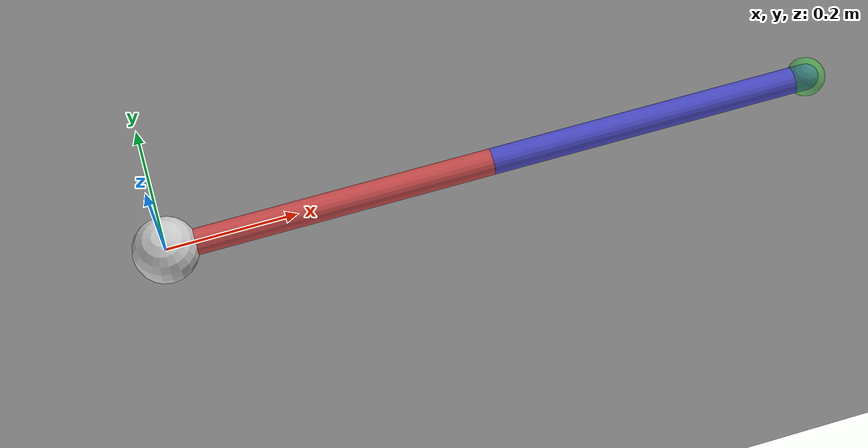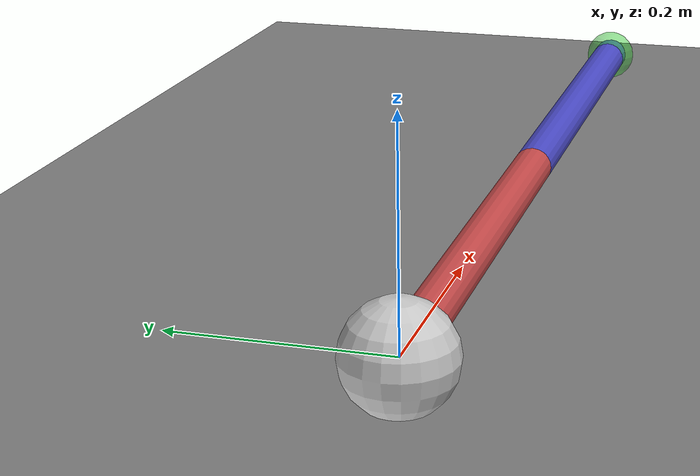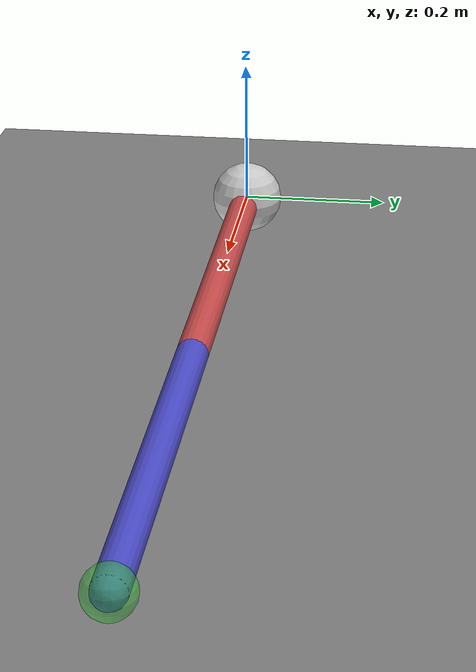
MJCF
<?xml version="1.0" ?>
<mujoco model="arm2dof">
  <compiler angle="radian" coordinate="local"/>

  <option timestep="0.002" gravity="0 0 -9.81"/>

  <default>
    <geom friction="1 0.5 0.5" margin="0.002"/>
    <joint limited="true" damping="0.1"/>
  </default>

  <worldbody>
    <!-- Ground -->
    <geom name="ground" type="plane" size="2 2 0.1" pos="0 0 -0.1"/>

    <!-- Base/Shoulder -->
    <body name="base" pos="0 0 0">
      <inertial mass="1.0" pos="0 0 0"
                fullinertia="0.1 0.1 0.1 0 0 0"/>
      <geom type="sphere" size="0.05" rgba="0.8 0.8 0.8 1" mass="1.0"/>

      <!-- Shoulder joint (rotate around Y axis) -->
      <joint name="q0" type="hinge" pos="0 0 0" axis="0 1 0"
             range="-3.14159 3.14159"/>

      <!-- Link 1 -->
      <body name="link1" pos="0 0 0">
        <inertial mass="1.0" pos="0.25 0 0"
                  fullinertia="0.05 0.008 0.05 0 0 0"/>
        <geom name="link1" type="capsule" fromto="0 0 0 0.5 0 0" size="0.02"
              rgba="0.8 0.3 0.3 1" mass="1.0"/>

        <!-- Elbow joint -->
        <joint name="q1" type="hinge" pos="0.5 0 0" axis="0 1 0"
               range="-3.14159 3.14159"/>

        <!-- Link 2 -->
        <body name="link2" pos="0.5 0 0">
          <inertial mass="1.0" pos="0.25 0 0"
                    fullinertia="0.05 0.008 0.05 0 0 0"/>
          <geom name="link2" type="capsule" fromto="0 0 0 0.5 0 0" size="0.02"
                rgba="0.3 0.3 0.8 1" mass="1.0"/>

          <!-- End effector marker -->
          <geom name="end_effector" type="sphere" pos="0.5 0 0" size="0.03"
                rgba="0.2 0.8 0.2 0.5"/>
        </body>
      </body>
    </body>
  </worldbody>

  <!-- Actuators -->
  <actuator>
    <motor name="tau0" joint="q0" gear="1" ctrlrange="-50 50"/>
    <motor name="tau1" joint="q1" gear="1" ctrlrange="-50 50"/>
  </actuator>

  <!-- Sensors -->
  <sensor>
    <jointpos name="q0_pos" joint="q0"/>
    <jointpos name="q1_pos" joint="q1"/>
    <jointvel name="q0_vel" joint="q0"/>
    <jointvel name="q1_vel" joint="q1"/>
  </sensor>
</mujoco>
